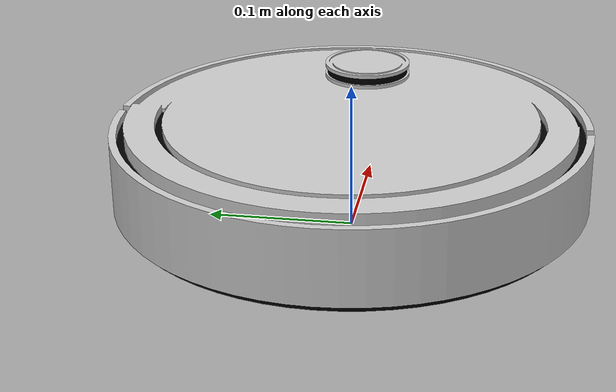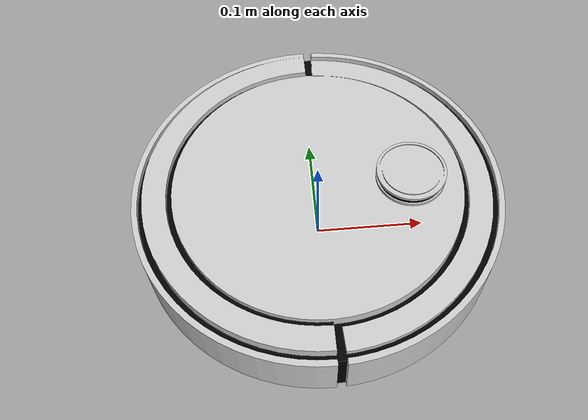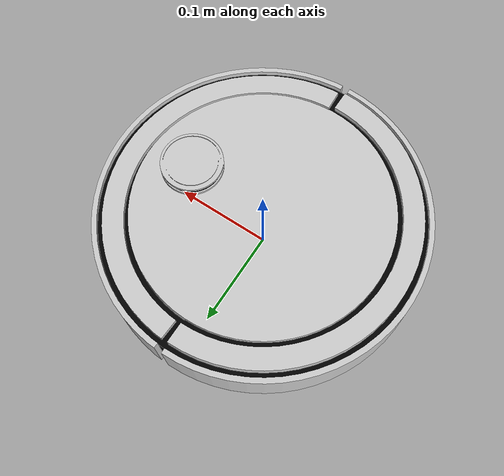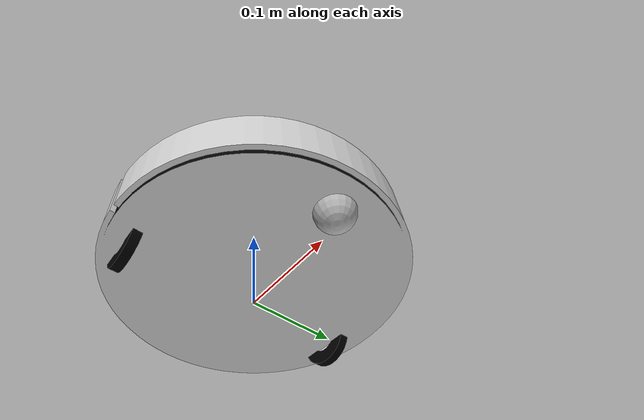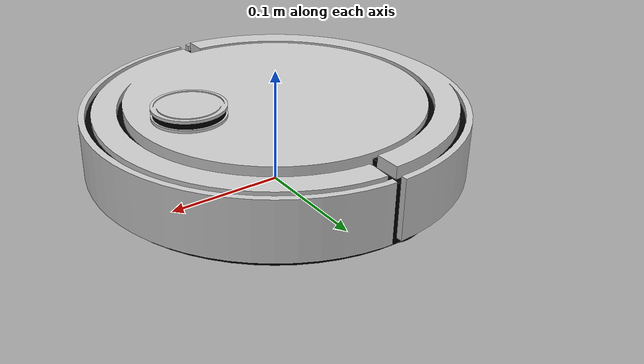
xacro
<?xml version="1.0"?>
<!-- Top level of the robot description. This file holds no
content of its own, it only pulls the parts together in order.-->
<robot name="my_robot" xmlns:xacro="http://www.ros.org/wiki/xacro">

  <!--Scan shape of the LiDAR. Set from the launch file so the different
  configurations can be swapped without editing the model.-->
  <xacro:arg name="lidar_fov" default="360"/>
  <xacro:arg name="lidar_rays" default="360"/>

  <!--Dimensions and materials. Must come first, since the parts below
  refer to these values.-->
  <xacro:include filename="parameters.xacro"/>

  <!--The robot: wheel macro, links and joints.-->
  <xacro:include filename="my_robot_core.xacro"/>

  <!--Gazebo specific settings: friction and the simulation plugins.-->
  <xacro:include filename="gazebo_control.xacro"/>

  <!--LiDAR link, joint and sensor.-->
  <xacro:include filename="lidar.xacro"/>

</robot>

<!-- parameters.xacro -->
<!--Dimensions, masses and materials. Included first, because everything below
it refers to these values.-->
<robot xmlns:xacro="http://www.ros.org/wiki/xacro">

<!--Shortcut to the mesh folder, so each visual only writes a file name.
$(find assignment4) is the installed package path, filled in by xacro.-->
<xacro:property name="mesh_dir" value="file://$(find assignment4)/meshes"/>

<!--============ SIZES, READ OFF THE DIAGRAM ============-->
<!--Numbers from assigment3-->

<!--Chassis: 32 cm across and 6 cm tall, riding 2 cm off the ground-->
<xacro:property name="base_radius" value="0.16"/>
<xacro:property name="base_height" value="0.06"/>
<xacro:property name="ground_clearance" value="0.02"/>

<!--Drive wheels: 6 cm across, 2.5 cm wide, 26 cm apart, 3 cm behind centre-->
<xacro:property name="wheel_radius" value="0.03"/>
<xacro:property name="wheel_thickness" value="0.025"/>
<xacro:property name="wheel_separation" value="0.26"/>
<xacro:property name="wheel_x_offset" value="-0.03"/>

<!--Caster: 4 cm sphere, 12 cm ahead of centre-->
<xacro:property name="caster_radius" value="0.02"/>
<xacro:property name="caster_x_offset" value="0.12"/>

<!--LiDAR: 6 cm across, 1 cm tall, 8 cm ahead of centre-->
<xacro:property name="lidar_radius" value="0.03"/>
<xacro:property name="lidar_height" value="0.01"/>
<xacro:property name="lidar_x_offset" value="0.08"/>

<!--Scan shape, taken from the arguments. Half the field of view is what the
sensor needs, since it counts out from straight ahead in both directions.-->
<xacro:property name="lidar_rays" value="${$(arg lidar_rays)}"/>
<xacro:property name="lidar_half_fov" value="${radians($(arg lidar_fov)) / 2}"/>

<!--============ WORKED OUT FROM THE SIZES ============-->
<!--Height of the chassis centre above the ground. Every part below hangs
off this one value, so raising the robot moves the whole body together.-->
<xacro:property name="base_z" value="${ground_clearance + base_height/2}"/>

<!--============ MASSES, FROM THE LINK TABLE ============-->
<xacro:property name="base_mass" value="5.0"/>
<xacro:property name="wheel_mass" value="0.2"/>
<xacro:property name="caster_mass" value="0.1"/>
<xacro:property name="lidar_mass" value="0.1"/>

<!--============ MATERIALS ============-->
<!--Only the caster needs one. The other links are drawn with meshes,
which carry their own colours.-->
<material name="light_grey">
  <color rgba="0.7 0.7 0.7 1.0"/>
</material>

<!--============ INERTIA ============-->
<!--Tensor for the primitive shapes. Each takes a mass and the dimensions.-->
<xacro:macro name="inertial_cylinder" params="mass radius length">
  <inertial>
    <origin xyz="0 0 0" rpy="0 0 0"/>
    <mass value="${mass}"/>
    <inertia ixx="${mass*(3*radius*radius + length*length)/12}" ixy="0" ixz="0"
             iyy="${mass*(3*radius*radius + length*length)/12}" iyz="0"
             izz="${mass*radius*radius/2}"/>
  </inertial>
</xacro:macro>

<xacro:macro name="inertial_sphere" params="mass radius">
  <inertial>
    <origin xyz="0 0 0" rpy="0 0 0"/>
    <mass value="${mass}"/>
    <inertia ixx="${2*mass*radius*radius/5}" ixy="0" ixz="0"
             iyy="${2*mass*radius*radius/5}" iyz="0"
             izz="${2*mass*radius*radius/5}"/>
  </inertial>
</xacro:macro>

</robot>

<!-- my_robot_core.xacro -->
<!--The robot itself: the wheel macro, then the links and joints. Uses the
dimensions and materials from parameters.xacro.-->
<robot xmlns:xacro="http://www.ros.org/wiki/xacro">

<!--Wheel macro that holds both the link and the joint, and takes a name and
a position-->
<xacro:macro name="drive_wheel" params="prefix x_offset y_offset">
<!--The mesh and the collision cylinder both stand upright here. The joint
below lays them flat.-->
  <link name="${prefix}_wheel_link">
    <visual>
      <origin xyz="0 0 0" rpy="0 0 0"/>
      <geometry>
        <mesh filename="${mesh_dir}/doomba_wheel.dae"/>
      </geometry>
    </visual>
    <collision>
      <origin xyz="0 0 0" rpy="0 0 0"/>
      <geometry>
        <cylinder radius="${wheel_radius}" length="${wheel_thickness}"/>
      </geometry>
    </collision>
    <xacro:inertial_cylinder mass="${wheel_mass}" radius="${wheel_radius}"
                             length="${wheel_thickness}"/>
  </link>

  <!--The rpy lays the cylinder flat and points its z sideways, making z
  the rolling axis. The height drops the wheel until it rests on the floor.-->
  <joint name="${prefix}_wheel_joint" type="continuous">
    <parent link="base_link"/>
    <child link="${prefix}_wheel_link"/>
    <origin xyz="${x_offset} ${y_offset} ${wheel_radius - base_z}"
            rpy="${-pi/2} 0 0"/>
    <axis xyz="0 0 1"/>
  </joint>

</xacro:macro>

<!--============================ LINKS ============================-->
<!--Root of the TF tree-->
<link name="base_footprint"/>

<!--Body of the robot. Drawn with the mesh, but its physics come from the
collision cylinder, which is kept at exactly the height on the diagram so
the scan plane clears the roof.-->
<link name="base_link">
  <visual>
    <origin xyz="0 0 0" rpy="0 0 0"/>
    <geometry>
      <mesh filename="${mesh_dir}/doomba_body.dae"/>
    </geometry>
  </visual>
  <collision>
    <origin xyz="0 0 0" rpy="0 0 0"/>
    <geometry>
      <cylinder radius="${base_radius}" length="${base_height}"/>
    </geometry>
  </collision>
  <xacro:inertial_cylinder mass="${base_mass}" radius="${base_radius}"
                           length="${base_height}"/>
</link>

<!--Front caster. The only link with no mesh, so it keeps the sphere for
both the visual and the collision.-->
<link name="caster_wheel_link">
  <visual>
    <origin xyz="0 0 0" rpy="0 0 0"/>
    <geometry>
      <sphere radius="${caster_radius}"/>
    </geometry>
    <material name="light_grey"/>
  </visual>

  <collision>
    <origin xyz="0 0 0" rpy="0 0 0"/>
    <geometry>
      <sphere radius="${caster_radius}"/>
    </geometry>
  </collision>
  <xacro:inertial_sphere mass="${caster_mass}" radius="${caster_radius}"/>
</link>

<!--============================ JOINTS ===========================-->
<!--Lifts the body off the ground: the clearance, plus half the body, puts
the chassis centre at its ride height.-->
<joint name="base_joint" type="fixed">
  <parent link="base_footprint"/>
  <child link="base_link"/>
  <origin xyz="0 0 ${base_z}" rpy="0 0 0"/>
</joint>

<!--Drops the caster until its underside reaches the ground.-->
<joint name="caster_wheel_joint" type="fixed">
  <parent link="base_link"/>
  <child link="caster_wheel_link"/>
  <origin xyz="${caster_x_offset} 0 ${caster_radius - base_z}" rpy="0 0 0"/>
</joint>

<!--============================ WHEELS ===========================-->
<!--The two drive wheels, both built from the macro. Half the track width
each side of the centre line.-->

<xacro:drive_wheel prefix="left" x_offset="${wheel_x_offset}"
                   y_offset="${wheel_separation/2}"/>

<xacro:drive_wheel prefix="right" x_offset="${wheel_x_offset}"
                   y_offset="${-wheel_separation/2}"/>

</robot>

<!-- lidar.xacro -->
<!--The LiDAR: its link, the joint holding it on the chassis, and the
Gazebo sensor that produces the scan.-->
<robot xmlns:xacro="http://www.ros.org/wiki/xacro">

    <link name="lidar_link">
        <visual>
            <origin xyz="0 0 0" rpy="0 0 0"/>
            <geometry>
                <mesh filename="${mesh_dir}/doomba_lidar.dae"/>
            </geometry>
        </visual>
        <collision>
            <origin xyz="0 0 0" rpy="0 0 0"/>
            <geometry>
                <cylinder radius="${lidar_radius}" length="${lidar_height}"/>
            </geometry>
        </collision>
        <xacro:inertial_cylinder mass="${lidar_mass}" radius="${lidar_radius}"
                                 length="${lidar_height}"/>
    </link>

    <!--Sits on the chassis roof, ahead of centre: half the body up, then
    half the sensor-->
    <joint name="lidar_joint" type="fixed">
        <parent link="base_link"/>
        <child link="lidar_link"/>
        <origin xyz="${lidar_x_offset} 0 ${base_height/2 + lidar_height/2}"
                rpy="0 0 0"/>
    </joint>

    <gazebo reference="lidar_link">
        <sensor name="lidar" type="gpu_lidar">
            <topic>scan</topic>
            <gz_frame_id>lidar_link</gz_frame_id>
            <update_rate>30</update_rate>
            <always_on>1</always_on>
            <visualize>true</visualize>
            <ray>
                <scan>
                    <horizontal>
                        <samples>${lidar_rays}</samples>
                        <resolution>1</resolution>
                        <min_angle>${-lidar_half_fov}</min_angle>
                        <max_angle>${lidar_half_fov}</max_angle>
                    </horizontal>
                    <vertical>
                        <samples>1</samples>
                        <resolution>0.01</resolution>
                        <min_angle>0</min_angle>
                        <max_angle>0</max_angle>
                    </vertical>
                </scan>
                <range>
                    <min>0.08</min>
                    <max>10.0</max>
                    <resolution>0.01</resolution>
                </range>
            </ray>
        </sensor>
    </gazebo>
</robot>
